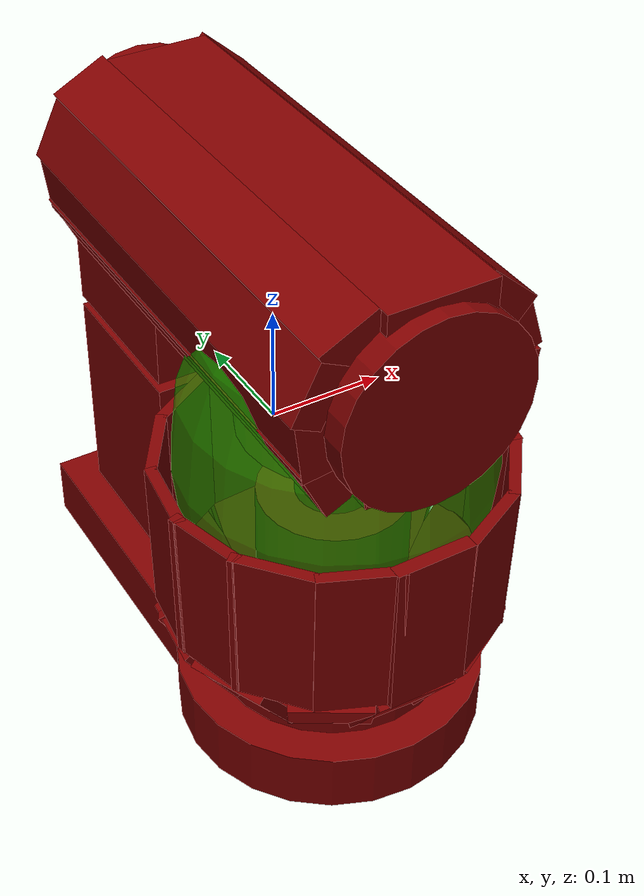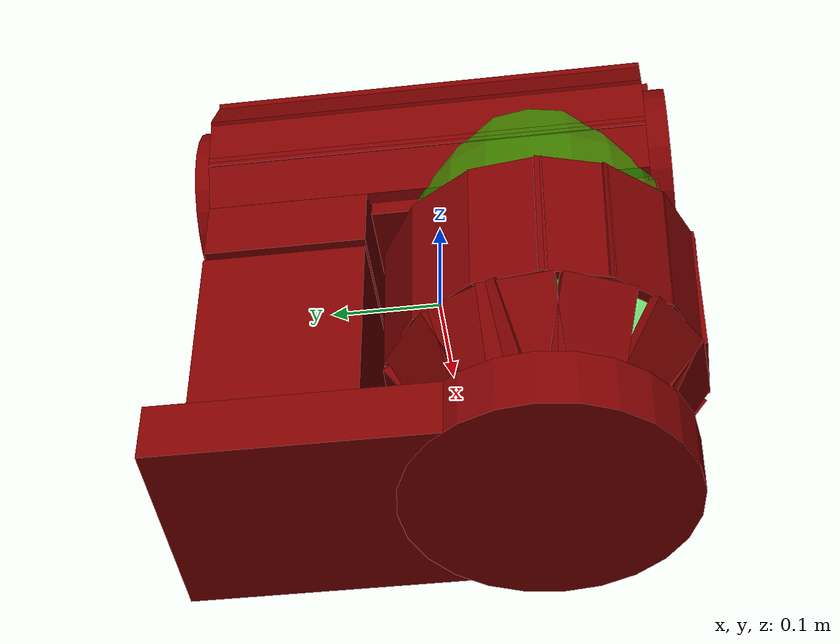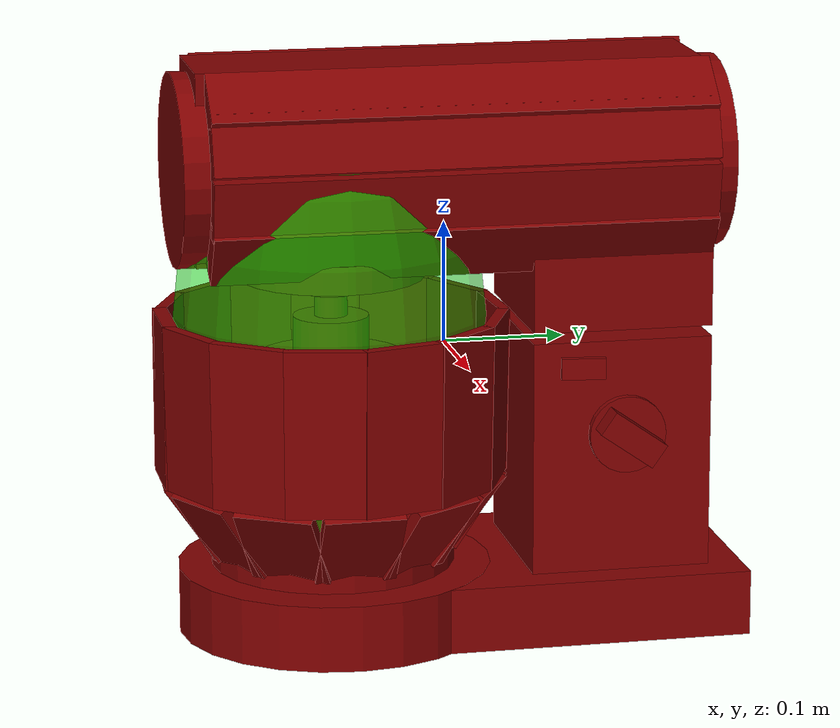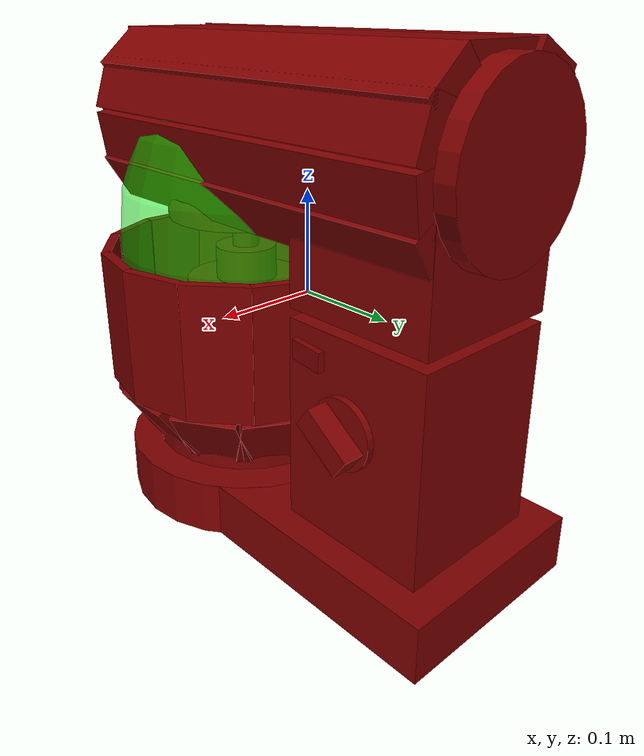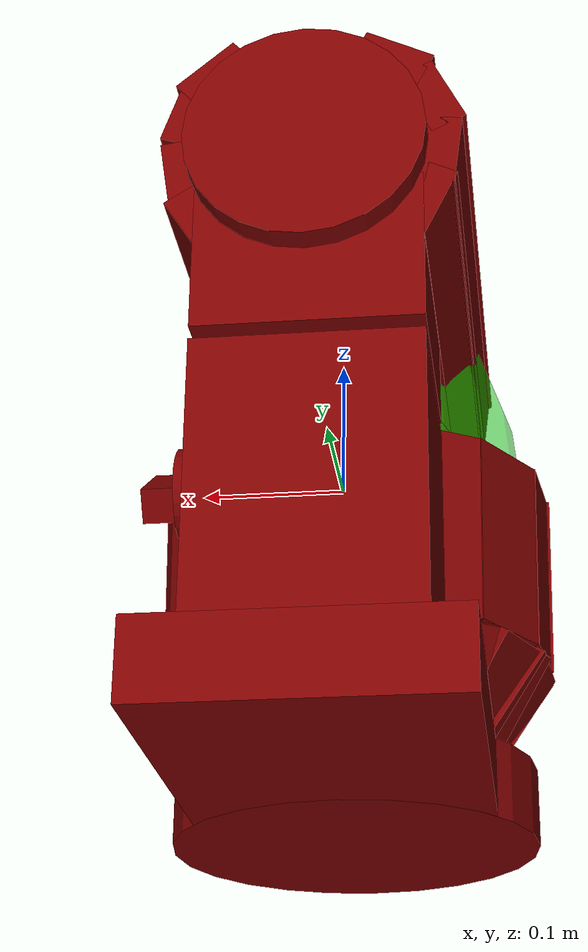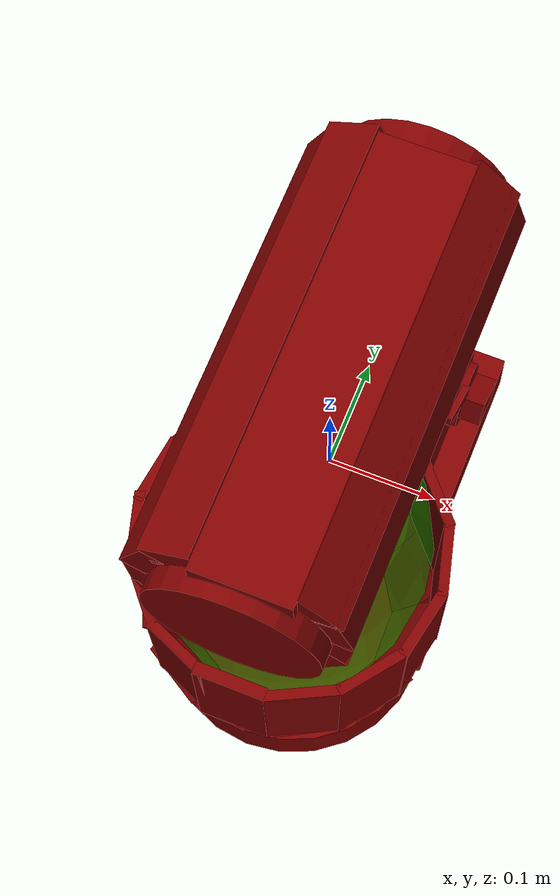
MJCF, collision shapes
<?xml version='1.0' encoding='UTF-8'?>
<mujoco model="model">
  <option timestep="0.002" gravity="0.0 0.0 -9.81"/>
  <compiler angle="radian"/>
  <asset>
    <mesh file="visuals/blender.obj" name="blender_vis"/>
    <mesh file="visuals/bowl.obj" name="bowl_vis"/>
    <mesh file="visuals/button_head_lock.obj" name="button_head_lock_vis"/>
    <mesh file="visuals/head.obj" name="head_vis"/>
    <mesh file="visuals/knob_speed.obj" name="knob_speed_vis"/>
    <mesh file="visuals/Body001.obj" name="Body001_vis"/>
    <texture file="visuals/T_BC001.png" name="Body001_material" type="2d"/>
    <material name="Body001_material" rgba="1 1 1 1.0" texture="Body001_material" shininess="0.3" specular="3"/>
    <texture file="visuals/T_BC001.png" name="bowl_material" type="2d"/>
    <material name="bowl_material" rgba="1 1 1 1.0" texture="bowl_material" shininess="0.1" specular="0.3103448502657381"/>
    <texture file="visuals/T_BC001.png" name="button_head_lock_material" type="2d"/>
    <material name="button_head_lock_material" rgba="1 1 1 1.0" texture="button_head_lock_material" shininess="0.5" specular="0.3103448502657381"/>
    <texture file="visuals/T_BC001.png" name="head_material" type="2d"/>
    <material name="head_material" rgba="1 1 1 1.0" texture="head_material" shininess="0.3" specular="3"/>
    <texture file="visuals/T_BC001.png" name="blender_material" type="2d"/>
    <material name="blender_material" rgba="1 1 1 1.0" texture="blender_material" shininess="0.5" specular="0.3103448502657381"/>
    <texture file="visuals/T_BC001.png" name="knob_speed_material" type="2d"/>
    <material name="knob_speed_material" rgba="1 1 1 1.0" texture="knob_speed_material" shininess="0.5" specular="0.3103448502657381"/>
  </asset>
  <default>
    <default class="visual">
      <geom conaffinity="0" contype="0" group="1" type="mesh"/>
    </default>
    <default class="collision">
      <geom group="0" rgba="0.5 0 0 0.5"/>
    </default>
    <default class="spawn">
      <geom group="0" rgba="1 1 1 0.5" contype="0" conaffinity="0"/>
      <site group="0" rgba="1 1 1 0.5"/>
    </default>
    <default class="region">
      <geom group="1" conaffinity="0" contype="0" rgba="0 1 0 0"/>
    </default>
  </default>
  <worldbody>
    <body>
      <body name="object">
        <geom mesh="Body001_vis" type="mesh" solimp="0.998 0.998 0.001" solref="0.001 1" friction="0.95 0.3 0.1" class="visual" material="Body001_material"/>
        <geom type="box" pos="0.00042830861639231443 0.04095406085252762 -0.20840677618980408" size="0.10231980681419373 0.19477786123752594 0.02692364901304245" quat="1.0 0.0 0.0 0.0" class="collision"/>
        <geom type="cylinder" pos="0.00042829487938433886 -0.09266556054353714 -0.20847895741462708" size="0.1292576640844345 0.02709665149450302" quat="0.7071067094802856 0.0 0.0 -0.7071068286895752" class="collision"/>
        <geom type="box" pos="0.00042829872108995914 0.13292652368545532 -0.08653932809829712" size="0.07416944950819016 0.07416944205760956 0.09849481284618378" quat="1.0 0.0 0.0 0.0" class="collision"/>
        <body name="bowl">
          <geom mesh="bowl_vis" type="mesh" solimp="0.998 0.998 0.001" solref="0.001 1" friction="0.95 0.3 0.1" class="visual" material="bowl_material"/>
          <geom type="box" pos="-0.0014009366277605295 -0.23004084825515747 -0.03691582381725311" size="0.03309106081724167 0.005862488877028227 0.06824978440999985" quat="1.0 0.0 0.0 0.0" class="collision"/>
          <geom type="box" pos="0.059321485459804535 -0.21646621823310852 -0.03691582381725311" size="0.03309106081724167 0.004731183871626854 0.06818049401044846" quat="0.9734629988670349 0.008081321604549885 0.001898531918413937 0.22869397699832916" class="collision"/>
          <geom type="box" pos="0.10746504366397858 -0.17750805616378784 -0.03691582381725311" size="0.03309106081724167 0.0047311848029494286 0.06818049401044846" quat="0.8958461284637451 0.0074369776993989944 0.0036883021239191294 0.44428685307502747" class="collision"/>
          <geom type="box" pos="0.1332763135433197 -0.1215931698679924 -0.03691582381725311" size="0.03309106081724167 0.004731183871626854 0.06818049401044846" quat="0.7720226049423218 0.006409041583538055 0.005276019684970379 0.6355408430099487" class="collision"/>
          <geom type="box" pos="0.13192318379878998 -0.060564734041690826 -0.03691582381725311" size="0.03309106081724167 0.0047311848029494286 0.06818049401044846" quat="0.6097407937049866 0.005061837378889322 0.006579509936273098 0.792557418346405" class="collision"/>
          <geom type="box" pos="0.10307663679122925 -0.005169164389371872 -0.03691582381725311" size="0.03309106081724167 0.004731184337288141 0.06818049401044846" quat="0.4115123450756073 0.003416221123188734 0.007565817795693874 0.9113664031028748" class="collision"/>
          <geom type="box" pos="0.05359375849366188 0.031041176989674568 -0.03691582381725311" size="0.03309106081724167 0.004731184337288141 0.06818049401044846" quat="0.1955234557390213 0.0016231606714427471 0.008141097612679005 0.9806638956069946" class="collision"/>
          <geom type="box" pos="-0.007394769228994846 0.041808947920799255 -0.03691582381725311" size="0.03309106081724167 0.004731183871626854 0.06818049401044846" quat="0.032846517860889435 0.0002726792881730944 -0.008296854794025421 -0.9994259476661682" class="collision"/>
          <geom type="box" pos="-0.06706365197896957 0.024294385686516762 -0.03691582381725311" size="0.03309106081724167 0.004731183871626854 0.06818049401044846" quat="0.26041916012763977 0.0021619002800434828 -0.008014881983399391 -0.965459942817688" class="collision"/>
          <geom type="box" pos="-0.11256183683872223 -0.017736714333295822 -0.03691582381725311" size="0.03309106454253197 0.0047311848029494286 0.06818049401044846" quat="0.4733882248401642 0.0039298865012824535 -0.007312186062335968 -0.880814790725708" class="collision"/>
          <geom type="box" pos="-0.13466301560401917 -0.0752631425857544 -0.03691582381725311" size="0.03309105709195137 0.004731184337288141 0.06818049401044846" quat="0.6606002449989319 0.005484049674123526 -0.0062319557182490826 -0.7506919503211975" class="collision"/>
          <geom type="box" pos="-0.1308744251728058 -0.13087207078933716 -0.03691582381725311" size="0.03309106081724167 0.004731183871626854 0.06818049401044846" quat="0.8003837466239929 0.00664447620511055 -0.004976241383701563 -0.599430501461029" class="collision"/>
          <geom type="box" pos="-0.10403576493263245 -0.18157687783241272 -0.03691582381725311" size="0.03309106081724167 0.004731183871626854 0.06818049401044846" quat="0.9087879657745361 0.0075444066897034645 -0.003463231259956956 -0.41717568039894104" class="collision"/>
          <geom type="box" pos="-0.054557688534259796 -0.2185983955860138 -0.03691582381725311" size="0.03309105709195137 0.004731184337288141 0.06818049401044846" quat="0.9797907471656799 0.008133845403790474 -0.0016591019229963422 -0.19985289871692657" class="collision"/>
          <geom type="box" pos="-0.007475210353732109 -0.2087996006011963 -0.1368081122636795" size="0.03309106081724167 0.004731183871626854 0.037795037031173706" quat="0.9543789029121399 0.2974259853363037 -0.007864391431212425 -0.02523522637784481" class="collision"/>
          <geom type="box" pos="0.054474182426929474 -0.1944655179977417 -0.1368081122636795" size="0.03309106081724167 0.004731183871626854 0.037795037031173706" quat="0.9241242408752441 0.28799739480018616 0.07471015304327011 0.23972956836223602" class="collision"/>
          <geom type="box" pos="0.09834898263216019 -0.1511295735836029 -0.1368081122636795" size="0.03309106081724167 0.004731183871626854 0.037795037031173706" quat="0.8259434103965759 0.2573999762535095 0.1492292284965515 0.47884589433670044" class="collision"/>
          <geom type="box" pos="0.1135195642709732 -0.09175466746091843 -0.1368081122636795" size="0.033091071993112564 0.004731183871626854 0.037795037031173706" quat="0.6684057116508484 0.208304300904274 0.21244624257087708 0.6816961765289307" class="collision"/>
          <geom type="box" pos="0.09546875953674316 -0.03214576095342636 -0.1368081122636795" size="0.03309106081724167 0.0047311848029494286 0.037795037031173706" quat="0.45871785283088684 0.14295648038387299 0.26093590259552 0.837289571762085" class="collision"/>
          <geom type="box" pos="0.053226616233587265 0.007114522159099579 -0.1368081122636795" size="0.03309106081724167 0.004731184337288141 0.037795037031173706" quat="0.23400573432445526 0.07292637228965759 0.2884542942047119 0.9255901575088501" class="collision"/>
          <geom type="box" pos="-0.006050604395568371 0.020831264555454254 -0.1368081122636795" size="0.03309105709195137 0.0047311848029494286 0.037795037031173706" quat="0.019314346835017204 0.006019193213433027 -0.2974691092967987 -0.9545170664787292" class="collision"/>
          <geom type="box" pos="-0.06648921221494675 0.0007209330797195435 -0.1368081122636795" size="0.03309106081724167 0.004731183871626854 0.037795037031173706" quat="0.28303512930870056 0.08820606768131256 -0.2841545343399048 -0.9117932915687561" class="collision"/>
          <geom type="box" pos="-0.11573822051286697 -0.08223489671945572 -0.1368081122636795" size="0.03309106081724167 0.004731183871626854 0.037795037031173706" quat="0.6395477652549744 0.1993110179901123 -0.22090552747249603 -0.7088403105735779" class="collision"/>
          <geom type="box" pos="-0.10655508935451508 -0.14043349027633667 -0.1368081122636795" size="0.03309106454253197 0.0047311848029494286 0.037795037031173706" quat="0.7998585104942322 0.2492707520723343 -0.16244442760944366 -0.5212506651878357" class="collision"/>
          <geom type="box" pos="-0.06049831584095955 -0.1926041543483734 -0.1368081122636795" size="0.03309106454253197 0.0047311848029494286 0.037795037031173706" quat="0.9201226234436035 0.28675028681755066 -0.07936228811740875 -0.25465720891952515" class="collision"/>
          <geom type="box" pos="-0.10489986836910248 -0.04401928931474686 -0.1368081122636795" size="0.03309106454253197 0.004731183871626854 0.037795037031173706" quat="0.5074445009231567 0.15814179182052612 -0.2520224452018738 -0.8086878061294556" class="collision"/>
          <geom type="cylinder" pos="4.211673513054848e-06 -0.09395257383584976 -0.1694784164428711" size="0.10042182356119156 0.010085941292345524" quat="0.7071065902709961 0.0 0.0 -0.7071069478988647" class="collision"/>
          <geom name="reg_bowl" type="ellipsoid" pos="0.0 -0.09500173479318619 0.031024903059005737" size="0.1260855793952942 0.128488227725029 0.18813301622867584" rgba="0 1 0 0.5" class="region"/>
        </body>
        <body name="button_head_lock">
          <joint axis="-1.0 0.0 0.0" pos="0.08464374393224716 0.09656886756420135 -0.006045132875442505" limited="true" name="button_head_lock_joint" range="0.0 0.01" type="slide" damping="1" frictionloss="1" armature=".01" stiffness="0.05"/>
          <geom mesh="button_head_lock_vis" type="mesh" solimp="0.998 0.998 0.001" solref="0.001 1" friction="0.95 0.3 0.1" class="visual" material="button_head_lock_material"/>
          <geom class="collision" type="box" pos="0.08847154676914215 0.09646552801132202 -0.0060764700174331665" size="0.01801537163555622 0.0029559654649347067 0.008721379563212395" quat="0.6639735102653503 0.0 0.0 -0.7477561235427856" name="button_head_lock_main"/>
        </body>
        <body name="head">
          <joint axis="-1.0 0.0 0.0" pos="-1.9767321646213531e-07 0.20729850232601166 0.014160387217998505" limited="true" name="head_joint" range="0.0 1.5707963267948966" type="hinge" damping="1" frictionloss="1" armature=".01" stiffness="0.05"/>
          <geom mesh="head_vis" type="mesh" solimp="0.998 0.998 0.001" solref="0.001 1" friction="0.95 0.3 0.1" class="visual" material="head_material"/>
          <geom type="box" pos="0.0074674952775239944 -0.004293609410524368 0.21594326198101044" size="0.04416288807988167 0.20512086153030396 0.02239714004099369" quat="1.0 0.0 0.0 0.0" class="collision"/>
          <geom type="box" pos="-0.0027395058423280716 -0.004293613135814667 0.10209592431783676" size="0.04416288807988167 0.20512086153030396 0.02239714004099369" quat="1.0 0.0 0.0 0.0" class="collision"/>
          <geom type="box" pos="0.07048700749874115 0.0023485422134399414 0.09924248605966568" size="0.02494754083454609 0.20430146157741547 0.012652105651795864" quat="0.8755977749824524 5.1257279772346214e-15 -0.4830409586429596 1.653380010679939e-08" class="collision"/>
          <geom type="box" pos="0.08195534348487854 0.0023485422134399414 0.13608293235301971" size="0.02494754083454609 0.20430146157741547 0.012652106583118439" quat="0.7592135071754456 1.544575590746531e-15 -0.6508416533470154 2.2277363953548956e-08" class="collision"/>
          <geom type="box" pos="0.07898087054491043 0.0023485422134399414 0.18389666080474854" size="0.02494754083454609 0.20430146157741547 0.012652107514441013" quat="0.5864487886428833 5.302158587400588e-15 -0.8099862933158875 2.7724652795768634e-08" class="collision"/>
          <geom type="box" pos="0.06274599581956863 0.0023485422134399414 0.2126481831073761" size="0.02494754083454609 0.20430146157741547 0.012652109377086163" quat="0.3527843654155731 5.9857705035258005e-15 -0.9357046484947205 3.202781329036952e-08" class="collision"/>
          <geom type="box" pos="-0.05434684827923775 0.0023485347628593445 0.21722880005836487" size="0.02494754083454609 0.20430144667625427 0.012652109377086163" quat="0.23273374140262604 5.161706548702195e-16 0.9725404977798462 -3.328864650598007e-08" class="collision"/>
          <geom type="box" pos="-0.07990510016679764 0.0023485422134399414 0.18492580950260162" size="0.02494754083454609 0.20430146157741547 0.012652109377086163" quat="0.5281650424003601 1.2215166317406777e-14 0.8491417169570923 -2.906488916210037e-08" class="collision"/>
          <geom type="box" pos="-0.08394889533519745 0.0023485347628593445 0.1427813470363617" size="0.02494753897190094 0.20430144667625427 0.012652105651795864" quat="0.749638557434082 -1.0133249965581063e-14 0.6618474721908569 -2.2654152331824662e-08" class="collision"/>
          <geom type="box" pos="-0.0734761655330658 0.0023485422134399414 0.10737738013267517" size="0.02494754083454609 0.20430146157741547 0.012652106583118439" quat="0.8473573923110962 -1.795064747886488e-14 0.5310230255126953 -1.8176178784301555e-08" class="collision"/>
          <geom type="cylinder" pos="0.0017984770238399506 0.21352113783359528 0.1523144394159317" size="0.07908689975738525 0.011399760842323303" quat="0.7071067094802856 0.7071068286895752 0.0 0.0" class="collision"/>
          <geom type="cylinder" pos="0.0017984770238399506 -0.21152974665164948 0.1523144394159317" size="0.07908689975738525 0.011399760842323303" quat="0.7071067094802856 0.7071068286895752 0.0 0.0" class="collision"/>
          <geom type="box" pos="0.00042829872108995914 0.13292652368545532 0.07294712960720062" size="0.07416944950819016 0.07416944205760956 0.05224032700061798" quat="1.0 0.0 0.0 0.0" class="collision"/>
          <geom type="cylinder" pos="0.0003095865249633789 -0.0942579135298729 0.053772490471601486" size="0.023545408621430397 0.006831387057900429" quat="1.0 0.0 0.0 0.0" class="collision"/>
          <geom type="cylinder" pos="0.0003095865249633789 -0.0935337170958519 0.07235226035118103" size="0.07699170708656311 0.011632343754172325" quat="1.0 0.0 0.0 0.0" class="collision"/>
          <body name="blender">
            <joint axis="0.0 0.0 1.0" pos="2.6226043701171875e-05 -0.09394791722297668 -0.046446189284324646" limited="false" name="blender_joint" range="0 360" type="hinge" damping="1" frictionloss="1" armature=".01" stiffness="0.05"/>
            <geom mesh="blender_vis" type="mesh" solimp="0.998 0.998 0.001" solref="0.001 1" friction="0.95 0.3 0.1" class="visual" material="blender_material"/>
            <geom type="cylinder" pos="0.0003095865249633789 -0.09400665014982224 0.03387758135795593" size="0.013519562780857086 0.016841044649481773" quat="1.0 0.0 0.0 0.0" class="collision"/>
            <geom type="cylinder" pos="0.0003095865249633789 -0.09400665014982224 -0.011727426201105118" size="0.03116130828857422 0.03881700709462166" quat="1.0 0.0 0.0 0.0" class="collision"/>
            <geom type="cylinder" pos="0.0003095865249633789 -0.09400665014982224 -0.05714580416679382" size="0.06160912662744522 0.05011708661913872" quat="1.0 0.0 0.0 0.0" class="collision"/>
          </body>
        </body>
        <body name="knob_speed">
          <joint axis="-1.0 0.0 0.0" pos="0.08752287179231644 0.13416588306427002 -0.06277215480804443" limited="true" name="knob_speed_joint" range="0.0 4.886921905584122" type="hinge" damping="0.05" armature="0.001"/>
          <geom mesh="knob_speed_vis" type="mesh" solimp="0.998 0.998 0.001" solref="0.001 1" friction="0.95 0.3 0.1" class="visual" material="knob_speed_material"/>
          <geom type="cylinder" pos="0.08560414612293243 0.13412246108055115 -0.06337134540081024" size="0.03172425180673599 0.0033612628467381" quat="0.4999999701976776 0.5 -0.5 -0.5" class="collision"/>
          <geom class="collision" type="box" pos="0.09973051398992538 0.13416588306427002 -0.06277215480804443" size="0.010161630809307098 0.026035785675048828 0.011017017997801304" quat="0.9537169337272644 -0.30070582032203674 -6.67701050720641e-17 -2.1475870397646303e-24" name="knob_speed_main"/>
        </body>
        <geom class="region" name="reg_main" type="box" pos="-1.2446194887161255e-05 0.0031806975603103638 0.0" size="0.12989385223388672 0.23359560763835907 0.23853134906291962"/>
      </body>
    </body>
  </worldbody>
  <actuator>
    <motor name="button_head_lock_joint_actuator" joint="button_head_lock_joint" gear="0.5"/>
    <motor name="head_joint_actuator" joint="head_joint" gear="100"/>
    <motor name="knob_speed_joint_actuator" joint="knob_speed_joint" gear="10"/>
    <motor name="blender_joint_actuator" joint="blender_joint" gear="20"/>
  </actuator>
</mujoco>
